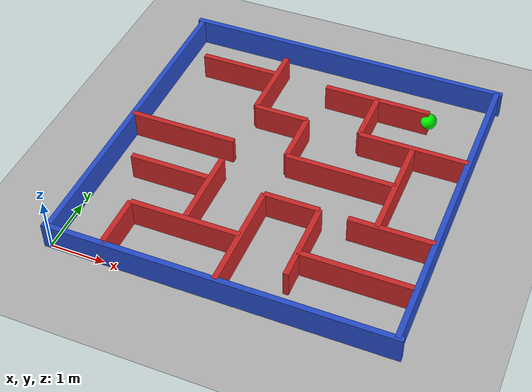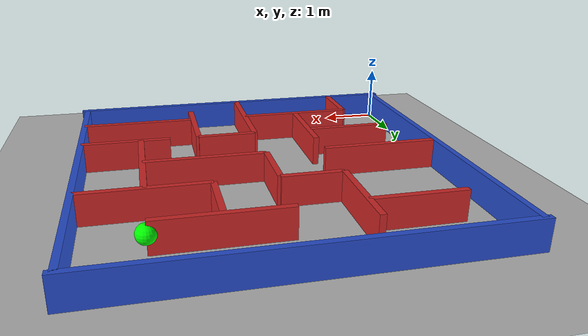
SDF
<?xml version="1.0" ?>
<sdf version="1.6">
  <world name="square_maze">
    <!-- Physics settings -->
    <physics type="ode">
      <max_step_size>0.001</max_step_size>
      <real_time_factor>1</real_time_factor>
      <real_time_update_rate>1000</real_time_update_rate>
    </physics>

    <!-- Sun -->
    <light name="sun" type="directional">
      <cast_shadows>true</cast_shadows>
      <pose>0 0 10 0 0 0</pose>
      <diffuse>0.8 0.8 0.8 1</diffuse>
      <specular>0.2 0.2 0.2 1</specular>
      <attenuation>
        <range>1000</range>
        <constant>0.9</constant>
        <linear>0.01</linear>
        <quadratic>0.001</quadratic>
      </attenuation>
      <direction>-0.5 0.1 -0.9</direction>
    </light>

    <!-- Ground Plane -->
    <model name="ground_plane">
      <static>true</static>
      <link name="link">
        <collision name="collision">
          <geometry>
            <plane>
              <normal>0 0 1</normal>
              <size>100 100</size>
            </plane>
          </geometry>
        </collision>
        <visual name="visual">
          <geometry>
            <plane>
              <normal>0 0 1</normal>
              <size>100 100</size>
            </plane>
          </geometry>
          <material>
            <ambient>0.7 0.7 0.7 1</ambient>
            <diffuse>0.7 0.7 0.7 1</diffuse>
            <specular>0.1 0.1 0.1 1</specular>
          </material>
        </visual>
      </link>
    </model>

    <!-- GOAL MARKER - Green Sphere at destination (5, 5) -->
    <model name="goal_marker">
      <static>true</static>
      <link name="link">
        <visual name="visual">
          <geometry>
            <sphere>
              <radius>0.15</radius>
            </sphere>
          </geometry>
          <material>
            <ambient>0 1 0 1</ambient>
            <diffuse>0 1 0 1</diffuse>
            <specular>0.5 1 0.5 1</specular>
            <emissive>0 0.5 0 1</emissive>
          </material>
        </visual>
      </link>
      <pose>5.0 5.0 0.3 0 0 0</pose>
    </model>

    <!-- Outer Boundary Walls (6x6 square) -->
    <!-- Bottom wall -->
    <model name="boundary_bottom">
      <static>true</static>
      <link name="link">
        <collision name="collision">
          <geometry>
            <box>
              <size>6.2 0.1 0.5</size>
            </box>
          </geometry>
        </collision>
        <visual name="visual">
          <geometry>
            <box>
              <size>6.2 0.1 0.5</size>
            </box>
          </geometry>
          <material>
            <script>
              <uri>file://media/materials/scripts/gazebo.material</uri>
              <name>Gazebo/Blue</name>
            </script>
          </material>
        </visual>
      </link>
      <pose>3.0 0.0 0.25 0 0 0</pose>
    </model>

    <!-- Top wall -->
    <model name="boundary_top">
      <static>true</static>
      <link name="link">
        <collision name="collision">
          <geometry>
            <box>
              <size>6.2 0.1 0.5</size>
            </box>
          </geometry>
        </collision>
        <visual name="visual">
          <geometry>
            <box>
              <size>6.2 0.1 0.5</size>
            </box>
          </geometry>
          <material>
            <script>
              <uri>file://media/materials/scripts/gazebo.material</uri>
              <name>Gazebo/Blue</name>
            </script>
          </material>
        </visual>
      </link>
      <pose>3.0 6.0 0.25 0 0 0</pose>
    </model>

    <!-- Left wall -->
    <model name="boundary_left">
      <static>true</static>
      <link name="link">
        <collision name="collision">
          <geometry>
            <box>
              <size>0.1 6.0 0.5</size>
            </box>
          </geometry>
        </collision>
        <visual name="visual">
          <geometry>
            <box>
              <size>0.1 6.0 0.5</size>
            </box>
          </geometry>
          <material>
            <script>
              <uri>file://media/materials/scripts/gazebo.material</uri>
              <name>Gazebo/Blue</name>
            </script>
          </material>
        </visual>
      </link>
      <pose>0.0 3.0 0.25 0 0 0</pose>
    </model>

    <!-- Right wall -->
    <model name="boundary_right">
      <static>true</static>
      <link name="link">
        <collision name="collision">
          <geometry>
            <box>
              <size>0.1 6.0 0.5</size>
            </box>
          </geometry>
        </collision>
        <visual name="visual">
          <geometry>
            <box>
              <size>0.1 6.0 0.5</size>
            </box>
          </geometry>
          <material>
            <script>
              <uri>file://media/materials/scripts/gazebo.material</uri>
              <name>Gazebo/Blue</name>
            </script>
          </material>
        </visual>
      </link>
      <pose>6.0 3.0 0.25 0 0 0</pose>
    </model>

    <!-- Internal Maze Walls (Red) -->
    <!-- Horizontal walls -->
    <model name="wall_h1">
      <static>true</static>
      <link name="link">
        <collision name="collision">
          <geometry>
            <box>
              <size>2.0 0.1 0.5</size>
            </box>
          </geometry>
        </collision>
        <visual name="visual">
          <geometry>
            <box>
              <size>2.0 0.1 0.5</size>
            </box>
          </geometry>
          <material>
            <script>
              <uri>file://media/materials/scripts/gazebo.material</uri>
              <name>Gazebo/Red</name>
            </script>
          </material>
        </visual>
      </link>
      <pose>2.0 1.0 0.25 0 0 0</pose>
    </model>

    <model name="wall_h2">
      <static>true</static>
      <link name="link">
        <collision name="collision">
          <geometry>
            <box>
              <size>2.0 0.1 0.5</size>
            </box>
          </geometry>
        </collision>
        <visual name="visual">
          <geometry>
            <box>
              <size>2.0 0.1 0.5</size>
            </box>
          </geometry>
          <material>
            <script>
              <uri>file://media/materials/scripts/gazebo.material</uri>
              <name>Gazebo/Red</name>
            </script>
          </material>
        </visual>
      </link>
      <pose>5.0 1.0 0.25 0 0 0</pose>
    </model>

    <model name="wall_h3">
      <static>true</static>
      <link name="link">
        <collision name="collision">
          <geometry>
            <box>
              <size>1.5 0.1 0.5</size>
            </box>
          </geometry>
        </collision>
        <visual name="visual">
          <geometry>
            <box>
              <size>1.5 0.1 0.5</size>
            </box>
          </geometry>
          <material>
            <script>
              <uri>file://media/materials/scripts/gazebo.material</uri>
              <name>Gazebo/Red</name>
            </script>
          </material>
        </visual>
      </link>
      <pose>1.25 2.0 0.25 0 0 0</pose>
    </model>

    <model name="wall_h4">
      <static>true</static>
      <link name="link">
        <collision name="collision">
          <geometry>
            <box>
              <size>1.0 0.1 0.5</size>
            </box>
          </geometry>
        </collision>
        <visual name="visual">
          <geometry>
            <box>
              <size>1.0 0.1 0.5</size>
            </box>
          </geometry>
          <material>
            <script>
              <uri>file://media/materials/scripts/gazebo.material</uri>
              <name>Gazebo/Red</name>
            </script>
          </material>
        </visual>
      </link>
      <pose>3.5 2.0 0.25 0 0 0</pose>
    </model>

    <model name="wall_h5">
      <static>true</static>
      <link name="link">
        <collision name="collision">
          <geometry>
            <box>
              <size>1.5 0.1 0.5</size>
            </box>
          </geometry>
        </collision>
        <visual name="visual">
          <geometry>
            <box>
              <size>1.5 0.1 0.5</size>
            </box>
          </geometry>
          <material>
            <script>
              <uri>file://media/materials/scripts/gazebo.material</uri>
              <name>Gazebo/Red</name>
            </script>
          </material>
        </visual>
      </link>
      <pose>5.25 2.0 0.25 0 0 0</pose>
    </model>

    <model name="wall_h6">
      <static>true</static>
      <link name="link">
        <collision name="collision">
          <geometry>
            <box>
              <size>2.0 0.1 0.5</size>
            </box>
          </geometry>
        </collision>
        <visual name="visual">
          <geometry>
            <box>
              <size>2.0 0.1 0.5</size>
            </box>
          </geometry>
          <material>
            <script>
              <uri>file://media/materials/scripts/gazebo.material</uri>
              <name>Gazebo/Red</name>
            </script>
          </material>
        </visual>
      </link>
      <pose>1.0 3.0 0.25 0 0 0</pose>
    </model>

    <model name="wall_h7">
      <static>true</static>
      <link name="link">
        <collision name="collision">
          <geometry>
            <box>
              <size>2.0 0.1 0.5</size>
            </box>
          </geometry>
        </collision>
        <visual name="visual">
          <geometry>
            <box>
              <size>2.0 0.1 0.5</size>
            </box>
          </geometry>
          <material>
            <script>
              <uri>file://media/materials/scripts/gazebo.material</uri>
              <name>Gazebo/Red</name>
            </script>
          </material>
        </visual>
      </link>
      <pose>4.0 3.0 0.25 0 0 0</pose>
    </model>

    <model name="wall_h8">
      <static>true</static>
      <link name="link">
        <collision name="collision">
          <geometry>
            <box>
              <size>1.0 0.1 0.5</size>
            </box>
          </geometry>
        </collision>
        <visual name="visual">
          <geometry>
            <box>
              <size>1.0 0.1 0.5</size>
            </box>
          </geometry>
          <material>
            <script>
              <uri>file://media/materials/scripts/gazebo.material</uri>
              <name>Gazebo/Red</name>
            </script>
          </material>
        </visual>
      </link>
      <pose>2.5 4.0 0.25 0 0 0</pose>
    </model>

    <model name="wall_h9">
      <static>true</static>
      <link name="link">
        <collision name="collision">
          <geometry>
            <box>
              <size>2.0 0.1 0.5</size>
            </box>
          </geometry>
        </collision>
        <visual name="visual">
          <geometry>
            <box>
              <size>2.0 0.1 0.5</size>
            </box>
          </geometry>
          <material>
            <script>
              <uri>file://media/materials/scripts/gazebo.material</uri>
              <name>Gazebo/Red</name>
            </script>
          </material>
        </visual>
      </link>
      <pose>5.0 4.0 0.25 0 0 0</pose>
    </model>

    <model name="wall_h10">
      <static>true</static>
      <link name="link">
        <collision name="collision">
          <geometry>
            <box>
              <size>1.5 0.1 0.5</size>
            </box>
          </geometry>
        </collision>
        <visual name="visual">
          <geometry>
            <box>
              <size>1.5 0.1 0.5</size>
            </box>
          </geometry>
          <material>
            <script>
              <uri>file://media/materials/scripts/gazebo.material</uri>
              <name>Gazebo/Red</name>
            </script>
          </material>
        </visual>
      </link>
      <pose>1.25 5.0 0.25 0 0 0</pose>
    </model>

    <model name="wall_h11">
      <static>true</static>
      <link name="link">
        <collision name="collision">
          <geometry>
            <box>
              <size>2.0 0.1 0.5</size>
            </box>
          </geometry>
        </collision>
        <visual name="visual">
          <geometry>
            <box>
              <size>2.0 0.1 0.5</size>
            </box>
          </geometry>
          <material>
            <script>
              <uri>file://media/materials/scripts/gazebo.material</uri>
              <name>Gazebo/Red</name>
            </script>
          </material>
        </visual>
      </link>
      <pose>4.0 5.0 0.25 0 0 0</pose>
    </model>

    <!-- Vertical walls -->
    <model name="wall_v1">
      <static>true</static>
      <link name="link">
        <collision name="collision">
          <geometry>
            <box>
              <size>0.1 1.0 0.5</size>
            </box>
          </geometry>
        </collision>
        <visual name="visual">
          <geometry>
            <box>
              <size>0.1 1.0 0.5</size>
            </box>
          </geometry>
          <material>
            <script>
              <uri>file://media/materials/scripts/gazebo.material</uri>
              <name>Gazebo/Red</name>
            </script>
          </material>
        </visual>
      </link>
      <pose>1.0 0.5 0.25 0 0 0</pose>
    </model>

    <model name="wall_v2">
      <static>true</static>
      <link name="link">
        <collision name="collision">
          <geometry>
            <box>
              <size>0.1 1.5 0.5</size>
            </box>
          </geometry>
        </collision>
        <visual name="visual">
          <geometry>
            <box>
              <size>0.1 1.5 0.5</size>
            </box>
          </geometry>
          <material>
            <script>
              <uri>file://media/materials/scripts/gazebo.material</uri>
              <name>Gazebo/Red</name>
            </script>
          </material>
        </visual>
      </link>
      <pose>2.0 1.75 0.25 0 0 0</pose>
    </model>

    <model name="wall_v3">
      <static>true</static>
      <link name="link">
        <collision name="collision">
          <geometry>
            <box>
              <size>0.1 2.0 0.5</size>
            </box>
          </geometry>
        </collision>
        <visual name="visual">
          <geometry>
            <box>
              <size>0.1 2.0 0.5</size>
            </box>
          </geometry>
          <material>
            <script>
              <uri>file://media/materials/scripts/gazebo.material</uri>
              <name>Gazebo/Red</name>
            </script>
          </material>
        </visual>
      </link>
      <pose>3.0 1.0 0.25 0 0 0</pose>
    </model>

    <model name="wall_v4">
      <static>true</static>
      <link name="link">
        <collision name="collision">
          <geometry>
            <box>
              <size>0.1 1.5 0.5</size>
            </box>
          </geometry>
        </collision>
        <visual name="visual">
          <geometry>
            <box>
              <size>0.1 1.5 0.5</size>
            </box>
          </geometry>
          <material>
            <script>
              <uri>file://media/materials/scripts/gazebo.material</uri>
              <name>Gazebo/Red</name>
            </script>
          </material>
        </visual>
      </link>
      <pose>4.0 1.25 0.25 0 0 0</pose>
    </model>

    <model name="wall_v5">
      <static>true</static>
      <link name="link">
        <collision name="collision">
          <geometry>
            <box>
              <size>0.1 1.0 0.5</size>
            </box>
          </geometry>
        </collision>
        <visual name="visual">
          <geometry>
            <box>
              <size>0.1 1.0 0.5</size>
            </box>
          </geometry>
          <material>
            <script>
              <uri>file://media/materials/scripts/gazebo.material</uri>
              <name>Gazebo/Red</name>
            </script>
          </material>
        </visual>
      </link>
      <pose>3.0 3.5 0.25 0 0 0</pose>
    </model>

    <model name="wall_v6">
      <static>true</static>
      <link name="link">
        <collision name="collision">
          <geometry>
            <box>
              <size>0.1 2.0 0.5</size>
            </box>
          </geometry>
        </collision>
        <visual name="visual">
          <geometry>
            <box>
              <size>0.1 2.0 0.5</size>
            </box>
          </geometry>
          <material>
            <script>
              <uri>file://media/materials/scripts/gazebo.material</uri>
              <name>Gazebo/Red</name>
            </script>
          </material>
        </visual>
      </link>
      <pose>5.0 3.0 0.25 0 0 0</pose>
    </model>

    <model name="wall_v7">
      <static>true</static>
      <link name="link">
        <collision name="collision">
          <geometry>
            <box>
              <size>0.1 1.5 0.5</size>
            </box>
          </geometry>
        </collision>
        <visual name="visual">
          <geometry>
            <box>
              <size>0.1 1.5 0.5</size>
            </box>
          </geometry>
          <material>
            <script>
              <uri>file://media/materials/scripts/gazebo.material</uri>
              <name>Gazebo/Red</name>
            </script>
          </material>
        </visual>
      </link>
      <pose>2.0 4.75 0.25 0 0 0</pose>
    </model>

    <model name="wall_v8">
      <static>true</static>
      <link name="link">
        <collision name="collision">
          <geometry>
            <box>
              <size>0.1 1.0 0.5</size>
            </box>
          </geometry>
        </collision>
        <visual name="visual">
          <geometry>
            <box>
              <size>0.1 1.0 0.5</size>
            </box>
          </geometry>
          <material>
            <script>
              <uri>file://media/materials/scripts/gazebo.material</uri>
              <name>Gazebo/Red</name>
            </script>
          </material>
        </visual>
      </link>
      <pose>4.0 4.5 0.25 0 0 0</pose>
    </model>

  </world>
</sdf>
